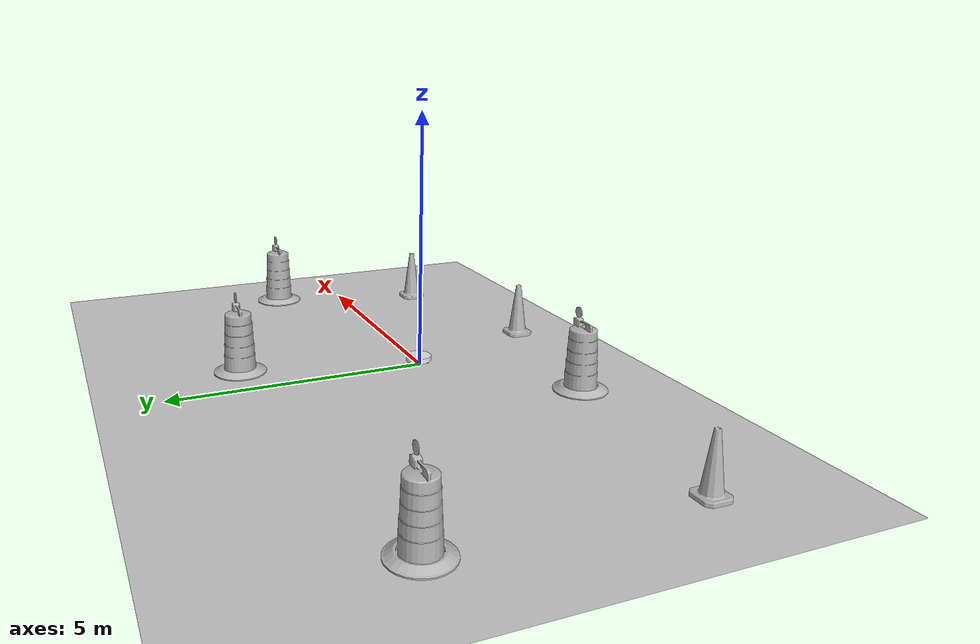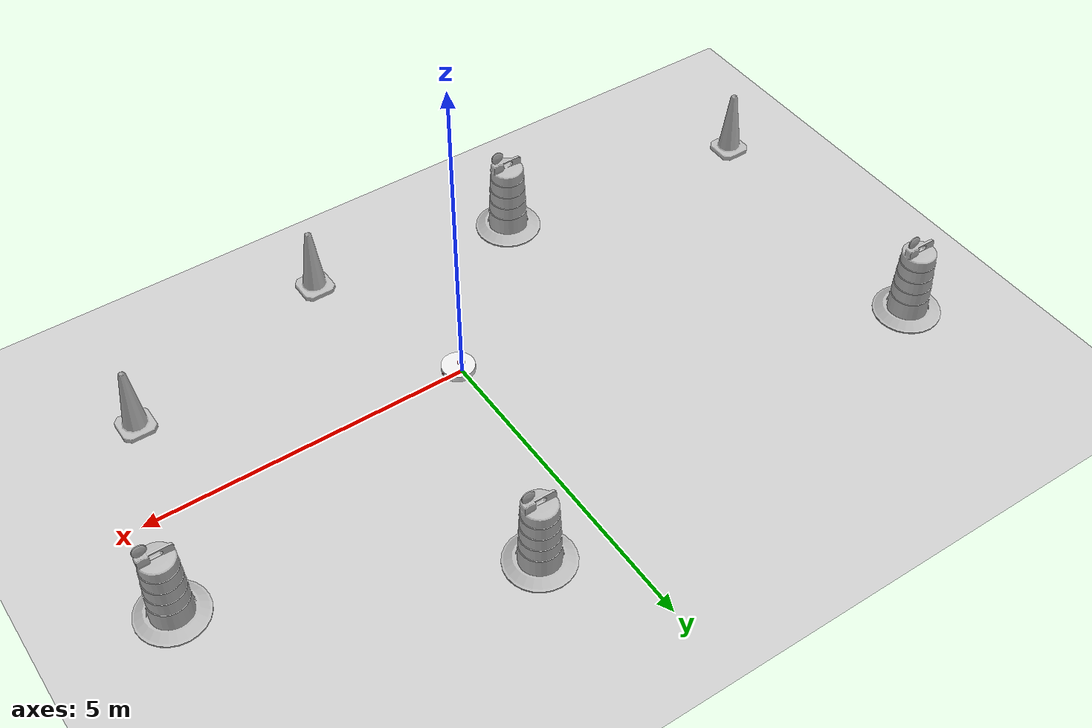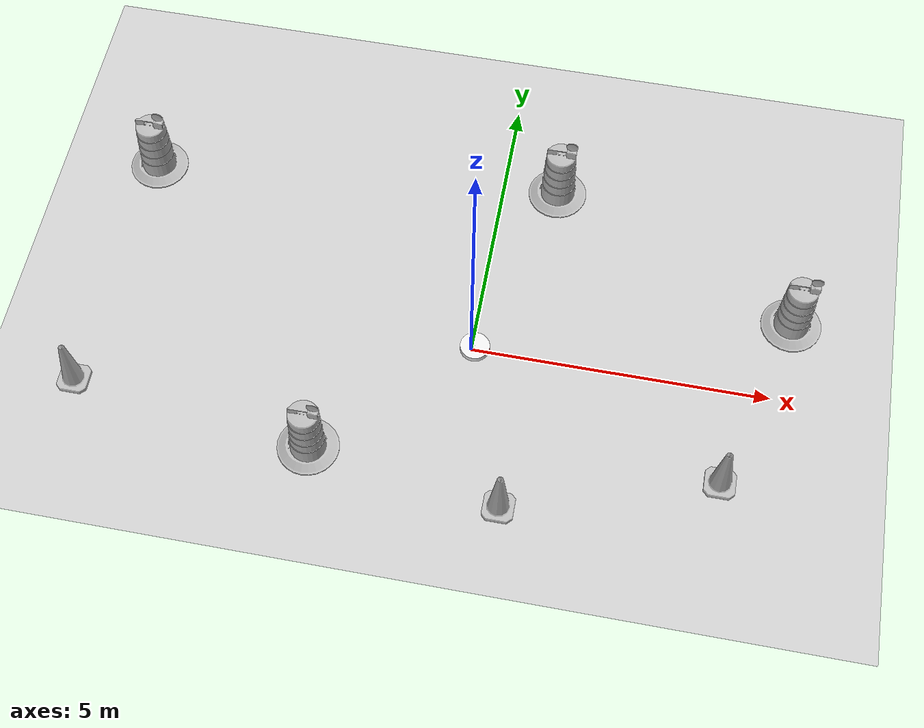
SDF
<sdf version="1.7">
 <world name="default">
  <light name="sun" type="directional">
   <pose>0 0 10 0 -0 0</pose>
   <diffuse>0.8 0.8 0.8 1</diffuse>
   <specular>0.2 0.2 0.2 1</specular>
   <attenuation>
    <range>1000</range>
    <constant>0.9</constant>
    <linear>0.01</linear>
    <quadratic>0.001</quadratic>
   </attenuation>
   <direction>-0.5 0.1 -0.9</direction>
   <spot><inner_angle>0</inner_angle><outer_angle>0</outer_angle><falloff>0</falloff></spot>
  </light>
  <model name="ground_plane">
   <static>1</static>
   <link name="link">
    <collision name="collision">
     <geometry><plane><normal>0 0 1</normal><size>100 100</size></plane></geometry>
     <surface>
      <contact><collide_bitmask>65535</collide_bitmask></contact>
      <friction><ode><mu>100</mu><mu2>50</mu2></ode></friction>
     </surface>
    </collision>
    <visual name="visual">
     <cast_shadows>0</cast_shadows>
     <geometry><plane><normal>0 0 1</normal><size>100 100</size></plane></geometry>
     <material>
      <script><uri>file://media/materials/scripts/gazebo.material</uri><name>Gazebo/Grey</name></script>
     </material>
    </visual>
   </link>
  </model>
  <gravity>0 0 -9.8</gravity>
  <magnetic_field>6e-06 2.3e-05 -4.2e-05</magnetic_field>
  <atmosphere type="adiabatic"/>
  <physics type="ode">
   <max_step_size>0.001</max_step_size>
   <real_time_factor>1</real_time_factor>
   <real_time_update_rate>1000</real_time_update_rate>
  </physics>
  <scene><ambient>0.4 0.4 0.4 1</ambient><background>0.7 0.7 0.7 1</background><shadows>1</shadows></scene>
  <spherical_coordinates>
   <surface_model>EARTH_WGS84</surface_model>
   <latitude_deg>0</latitude_deg>
   <longitude_deg>0</longitude_deg>
   <elevation>0</elevation>
   <heading_deg>0</heading_deg>
  </spherical_coordinates>
  <model name="my_bot">
   <link name="base_link">
    <inertial>
     <pose>0.055714 0 0.073571 0 -0 0</pose>
     <mass>0.7</mass>
     <inertia>
      <ixx>0.0058469</ixx>
      <ixy>0</ixy>
      <ixz>0.000994286</ixz>
      <iyy>0.00688405</iyy>
      <iyz>0</iyz>
      <izz>0.00876214</izz>
     </inertia>
    </inertial>
    <collision name="base_link_fixed_joint_lump__chassis_collision">
     <pose>0.05 0 0.075 0 -0 0</pose>
     <geometry><cylinder><length>0.1</length><radius>0.25</radius></cylinder></geometry>
    </collision>
    <collision name="base_link_fixed_joint_lump__caster_wheel_collision_1">
     <pose>0.14 0 0 0 -0 0</pose>
     <geometry><sphere><radius>0.05</radius></sphere></geometry>
     <surface><friction><ode><mu>0.001</mu><mu2>0.001</mu2></ode></friction></surface>
    </collision>
    <collision name="base_link_fixed_joint_lump__laser_frame_collision_2">
     <pose>0 0 0.14 0 -0 0</pose>
     <geometry><cylinder><length>0.04</length><radius>0.05</radius></cylinder></geometry>
    </collision>
    <visual name="base_link_fixed_joint_lump__chassis_visual">
     <pose>0.05 0 0.075 0 -0 0</pose>
     <geometry><cylinder><length>0.1</length><radius>0.25</radius></cylinder></geometry>
     <material>
      <script><name>Gazebo/White</name><uri>file://media/materials/scripts/gazebo.material</uri></script>
     </material>
    </visual>
    <visual name="base_link_fixed_joint_lump__camera_link_visual_1">
     <pose>0.3 0 0.08 0 -0 0</pose>
     <geometry><box><size>0.01 0.03 0.03</size></box></geometry>
     <material>
      <script><name>Gazebo/Red</name><uri>file://media/materials/scripts/gazebo.material</uri></script>
     </material>
    </visual>
    <visual name="base_link_fixed_joint_lump__caster_wheel_visual_2">
     <pose>0.14 0 0 0 -0 0</pose>
     <geometry><sphere><radius>0.05</radius></sphere></geometry>
     <material>
      <script><name>Gazebo/Black</name><uri>file://media/materials/scripts/gazebo.material</uri></script>
     </material>
    </visual>
    <visual name="base_link_fixed_joint_lump__laser_frame_visual_3">
     <pose>0 0 0.14 0 -0 0</pose>
     <geometry><cylinder><length>0.04</length><radius>0.05</radius></cylinder></geometry>
     <material>
      <script><name>Gazebo/Red</name><uri>file://media/materials/scripts/gazebo.material</uri></script>
     </material>
    </visual>
    <sensor name="camera" type="camera">
     <visualize>1</visualize>
     <update_rate>10</update_rate>
     <camera>
      <horizontal_fov>1.089</horizontal_fov>
      <image><format>R8G8B8</format><width>640</width><height>480</height></image>
      <clip><near>0.05</near><far>8</far></clip>
     </camera>
     <plugin name="camera_controller" filename="libgazebo_ros_camera.so">
      <frame_name>camera_link_optical</frame_name>
     </plugin>
     <pose>0.3 0 0.08 0 -0 0</pose>
    </sensor>
    <sensor name="laser" type="ray">
     <visualize>0</visualize>
     <update_rate>10</update_rate>
     <ray>
      <scan>
       <horizontal>
        <samples>360</samples>
        <min_angle>-3.14</min_angle>
        <max_angle>3.14</max_angle>
        <resolution>1</resolution>
       </horizontal>
       <vertical><samples>1</samples><min_angle>0</min_angle><max_angle>0</max_angle></vertical>
      </scan>
      <range><min>0.3</min><max>12</max></range>
     </ray>
     <plugin name="laser_controller" filename="libgazebo_ros_ray_sensor.so">
      <ros><argument>~/out:=scan</argument></ros>
      <output_type>sensor_msgs/LaserScan</output_type>
      <frame_name>laser_frame</frame_name>
     </plugin>
     <pose>0 0 0.14 0 -0 0</pose>
    </sensor>
   </link>
   <joint name="left_wheel_joint" type="revolute">
    <pose relative_to="base_link">0 0.175 0 -1.5708 0 0</pose>
    <parent>base_link</parent>
    <child>left_wheel</child>
    <axis>
     <xyz>0 0 1</xyz>
     <limit><lower>-1e+16</lower><upper>1e+16</upper></limit>
     <dynamics><spring_reference>0</spring_reference><spring_stiffness>0</spring_stiffness></dynamics>
    </axis>
   </joint>
   <link name="left_wheel">
    <pose relative_to="left_wheel_joint">0 0 0 0 -0 0</pose>
    <inertial>
     <mass>0.1</mass>
     <inertia>
      <ixx>8.33333e-05</ixx>
      <ixy>0</ixy>
      <ixz>0</ixz>
      <iyy>8.33333e-05</iyy>
      <iyz>0</iyz>
      <izz>0.000125</izz>
     </inertia>
    </inertial>
    <collision name="left_wheel_collision"><geometry><sphere><radius>0.05</radius></sphere></geometry></collision>
    <visual name="left_wheel_visual">
     <geometry><cylinder><length>0.04</length><radius>0.05</radius></cylinder></geometry>
     <material>
      <script><name>Gazebo/Blue</name><uri>file://media/materials/scripts/gazebo.material</uri></script>
     </material>
    </visual>
   </link>
   <joint name="right_wheel_joint" type="revolute">
    <pose relative_to="base_link">0 -0.175 0 1.5708 -0 0</pose>
    <parent>base_link</parent>
    <child>right_wheel</child>
    <axis>
     <xyz>0 0 -1</xyz>
     <limit><lower>-1e+16</lower><upper>1e+16</upper></limit>
     <dynamics><spring_reference>0</spring_reference><spring_stiffness>0</spring_stiffness></dynamics>
    </axis>
   </joint>
   <link name="right_wheel">
    <pose relative_to="right_wheel_joint">0 0 0 0 -0 0</pose>
    <inertial>
     <mass>0.1</mass>
     <inertia>
      <ixx>8.33333e-05</ixx>
      <ixy>0</ixy>
      <ixz>0</ixz>
      <iyy>8.33333e-05</iyy>
      <iyz>0</iyz>
      <izz>0.000125</izz>
     </inertia>
    </inertial>
    <collision name="right_wheel_collision">
     <geometry><sphere><radius>0.05</radius></sphere></geometry>
    </collision>
    <visual name="right_wheel_visual">
     <geometry><cylinder><length>0.04</length><radius>0.05</radius></cylinder></geometry>
     <material>
      <script><name>Gazebo/Blue</name><uri>file://media/materials/scripts/gazebo.material</uri></script>
     </material>
    </visual>
   </link>
   <static>0</static>
   <plugin name="gazebo_ros2_control" filename="libgazebo_ros2_control.so">
    <parameters>/home/rocco/dev_ws/install/mobile_rob/share/mobile_rob/config/my_controllers.yaml</parameters>
   </plugin>
   <pose>0.015557 0.000383 0.049997 -1.7e-05 -2.2e-05 -0.00113</pose>
  </model>
  <model name="Construction Barrel">
   <link name="link">
    <inertial>
     <pose>0 0 0.4 0 -0 0</pose>
     <mass>500</mass>
     <inertia><ixx>51.2096</ixx><iyy>51.2096</iyy><izz>25</izz><ixy>0</ixy><ixz>0</ixz><iyz>0</iyz></inertia>
    </inertial>
    <collision name="collision">
     <geometry><mesh><uri>model://construction_barrel/meshes/construction_barrel.dae</uri></mesh></geometry>
    </collision>
    <visual name="visual">
     <geometry><mesh><uri>model://construction_barrel/meshes/construction_barrel.dae</uri></mesh></geometry>
    </visual>
   </link>
   <pose>5.2334 1.45592 -0 1e-06 -1e-06 -1.2e-05</pose>
  </model>
  <model name="Construction Cone">
   <link name="link">
    <collision name="collision">
     <geometry>
      <mesh><scale>10 10 10</scale><uri>model://construction_cone/meshes/construction_cone.dae</uri></mesh>
     </geometry>
    </collision>
    <visual name="visual">
     <geometry>
      <mesh><scale>10 10 10</scale><uri>model://construction_cone/meshes/construction_cone.dae</uri></mesh>
     </geometry>
    </visual>
    <inertial>
     <inertia><ixx>1</ixx><ixy>0</ixy><ixz>0</ixz><iyy>1</iyy><iyz>0</iyz><izz>1</izz></inertia>
     <mass>1</mass>
    </inertial>
   </link>
   <pose>4.33275 -1.67263 -1e-05 -1e-06 0 0</pose>
  </model>
  <model name="Construction Barrel_0">
   <link name="link">
    <inertial>
     <pose>0 0 0.4 0 -0 0</pose>
     <mass>500</mass>
     <inertia><ixx>51.2096</ixx><iyy>51.2096</iyy><izz>25</izz><ixy>0</ixy><ixz>0</ixz><iyz>0</iyz></inertia>
    </inertial>
    <collision name="collision">
     <geometry><mesh><uri>model://construction_barrel/meshes/construction_barrel.dae</uri></mesh></geometry>
    </collision>
    <visual name="visual">
     <geometry><mesh><uri>model://construction_barrel/meshes/construction_barrel.dae</uri></mesh></geometry>
    </visual>
   </link>
   <pose>0.953268 3.39512 -2e-06 -0 7e-06 -8e-06</pose>
  </model>
  <model name="Construction Cone_0">
   <link name="link">
    <collision name="collision">
     <geometry>
      <mesh><scale>10 10 10</scale><uri>model://construction_cone/meshes/construction_cone.dae</uri></mesh>
     </geometry>
    </collision>
    <visual name="visual">
     <geometry>
      <mesh><scale>10 10 10</scale><uri>model://construction_cone/meshes/construction_cone.dae</uri></mesh>
     </geometry>
    </visual>
    <inertial>
     <inertia><ixx>1</ixx><ixy>0</ixy><ixz>0</ixz><iyy>1</iyy><iyz>0</iyz><izz>1</izz></inertia>
     <mass>1</mass>
    </inertial>
   </link>
   <pose>0.929706 -2.72603 -0 0 -0 0</pose>
  </model>
  <model name="Construction Barrel_1">
   <link name="link">
    <inertial>
     <pose>0 0 0.4 0 -0 0</pose>
     <mass>500</mass>
     <inertia><ixx>51.2096</ixx><iyy>51.2096</iyy><izz>25</izz><ixy>0</ixy><ixz>0</ixz><iyz>0</iyz></inertia>
    </inertial>
    <collision name="collision">
     <geometry><mesh><uri>model://construction_barrel/meshes/construction_barrel.dae</uri></mesh></geometry>
    </collision>
    <visual name="visual">
     <geometry><mesh><uri>model://construction_barrel/meshes/construction_barrel.dae</uri></mesh></geometry>
    </visual>
   </link>
   <pose>-2.27005 -2.24527 1e-06 2e-06 3e-06 -6e-06</pose>
  </model>
  <model name="Construction Barrel_2">
   <link name="link">
    <inertial>
     <pose>0 0 0.4 0 -0 0</pose>
     <mass>500</mass>
     <inertia><ixx>51.2096</ixx><iyy>51.2096</iyy><izz>25</izz><ixy>0</ixy><ixz>0</ixz><iyz>0</iyz></inertia>
    </inertial>
    <collision name="collision">
     <geometry><mesh><uri>model://construction_barrel/meshes/construction_barrel.dae</uri></mesh></geometry>
    </collision>
    <visual name="visual">
     <geometry><mesh><uri>model://construction_barrel/meshes/construction_barrel.dae</uri></mesh></geometry>
    </visual>
   </link>
   <pose>-6.17065 2.69835 0 0 0 -3e-06</pose>
  </model>
  <model name="Construction Cone_1">
   <link name="link">
    <collision name="collision">
     <geometry>
      <mesh><scale>10 10 10</scale><uri>model://construction_cone/meshes/construction_cone.dae</uri></mesh>
     </geometry>
    </collision>
    <visual name="visual">
     <geometry>
      <mesh><scale>10 10 10</scale><uri>model://construction_cone/meshes/construction_cone.dae</uri></mesh>
     </geometry>
    </visual>
    <inertial>
     <inertia><ixx>1</ixx><ixy>0</ixy><ixz>0</ixz><iyy>1</iyy><iyz>0</iyz><izz>1</izz></inertia>
     <mass>1</mass>
    </inertial>
   </link>
   <pose>-6.36065 -1.76151 -0 0 -1e-06 0</pose>
  </model>
 </world>
</sdf>
